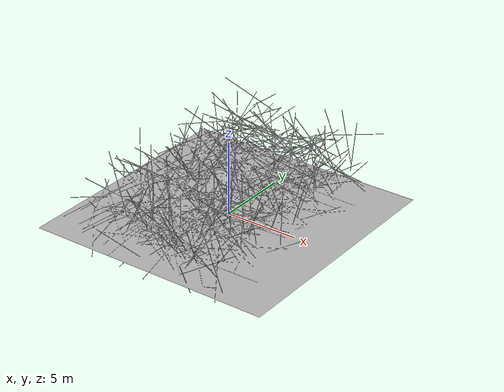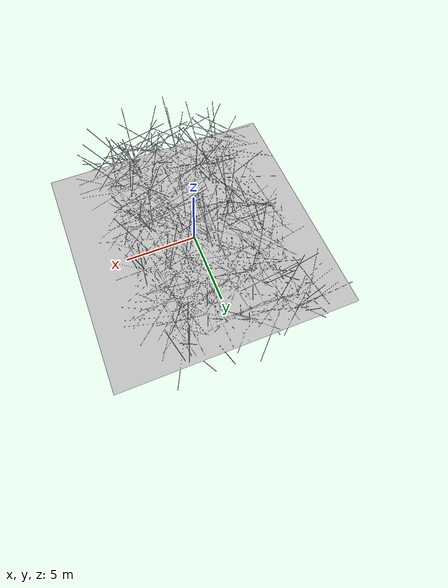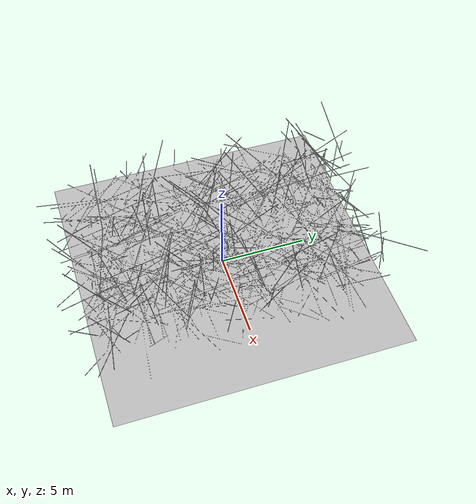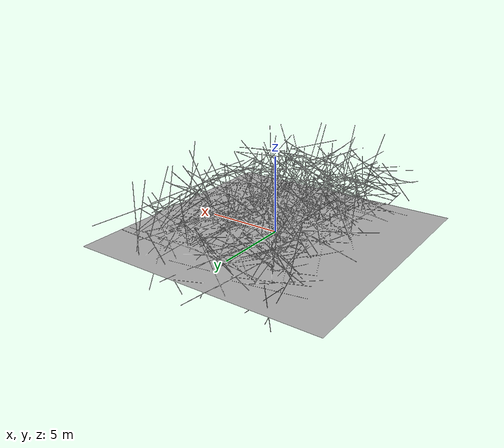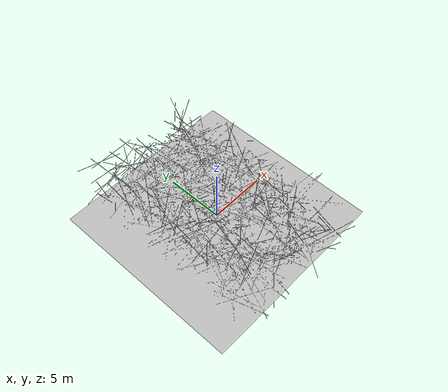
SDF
<?xml version="1.0"?>
<sdf version="1.4">
  <world name="default">
    <include>
      <uri>model://sun</uri>
    </include>
      <model name="my_mesh">
      <pose>0 0 0  0 0 0</pose>
      <static>true</static>
      <link name="body">
        <visual name="visual">
          <geometry>
            <mesh><uri>model://last.dae</uri></mesh>
          </geometry>
        </visual>
      </link>
    </model>
    <plugin name="tol-control" filename="libtolworldcontrol.so" />
  </world>
</sdf>
